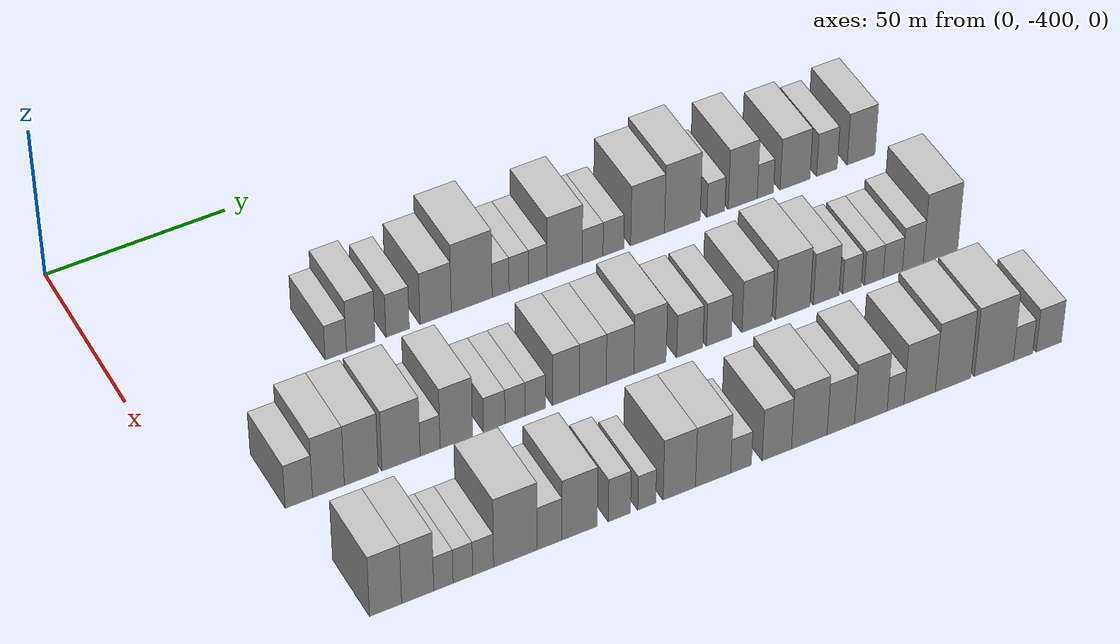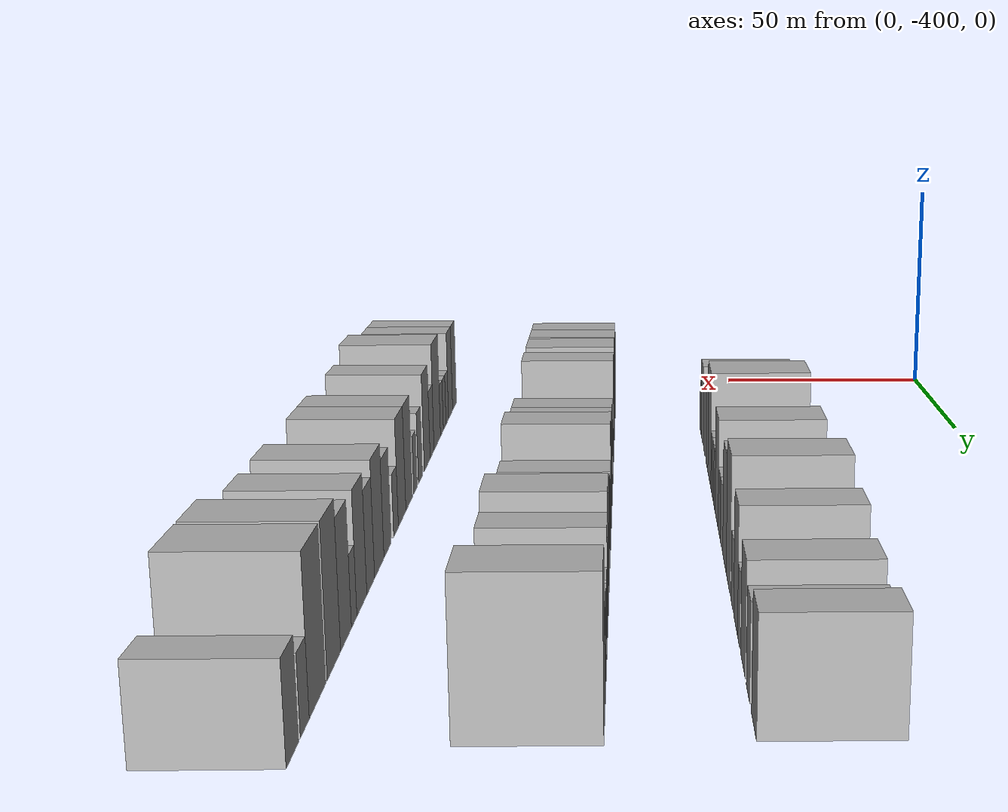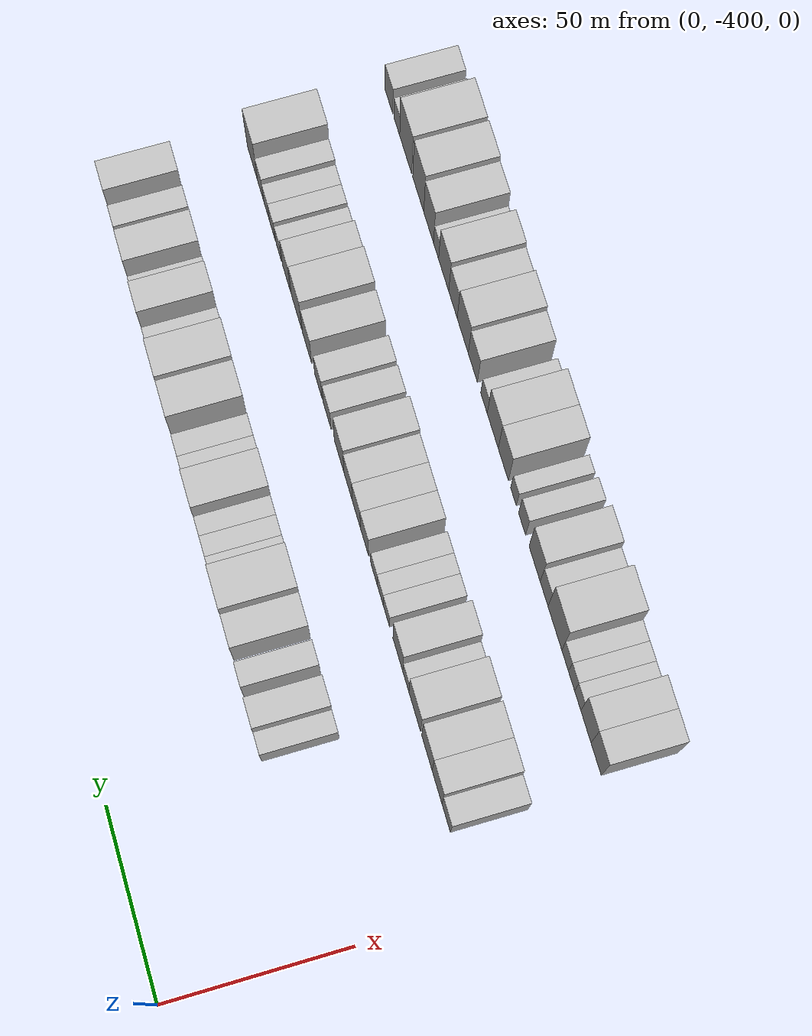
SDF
<sdf version="1.6">
 <world name="default">
  <model name="building_1">
   <static>1</static>
   <pose>50.0000 -347.2101 0 0.000000 0.000000 0.000000</pose>
   <link name="link">
    <pose>0 0 6.00 0 0 0</pose>
    <collision name="collision"><geometry><box><size>20.0000 5.8599 12.0000</size></box></geometry></collision>
    <visual name="visual">
     <cast_shadows>0</cast_shadows>
     <geometry><box><size>20.0000 5.8599 12.0000</size></box></geometry>
     <material>
      <script>
       <uri>model://HANNAS_wall/materials/scripts</uri>
       <uri>model://HANNAS_wall/materials/textures</uri>
       <name>vrc/HANNAS_wall</name>
      </script>
     </material>
    </visual>
   </link>
  </model>
  <model name="building_2">
   <static>1</static>
   <pose>50.0000 -340.2969 0 0.000000 0.000000 0.000000</pose>
   <link name="link">
    <pose>0 0 9.00 0 0 0</pose>
    <collision name="collision"><geometry><box><size>20.0000 7.9666 18.0000</size></box></geometry></collision>
    <visual name="visual">
     <cast_shadows>0</cast_shadows>
     <geometry><box><size>20.0000 7.9666 18.0000</size></box></geometry>
     <material>
      <script>
       <uri>model://HANNAS_wall/materials/scripts</uri>
       <uri>model://HANNAS_wall/materials/textures</uri>
       <name>vrc/HANNAS_wall</name>
      </script>
     </material>
    </visual>
   </link>
  </model>
  <model name="building_3">
   <static>1</static>
   <pose>50.0000 -330.0451 0 0.000000 0.000000 0.000000</pose>
   <link name="link">
    <pose>0 0 7.50 0 0 0</pose>
    <collision name="collision"><geometry><box><size>20.0000 6.5369 15.0000</size></box></geometry></collision>
    <visual name="visual">
     <cast_shadows>0</cast_shadows>
     <geometry><box><size>20.0000 6.5369 15.0000</size></box></geometry>
     <material>
      <script>
       <uri>model://HANNAS_wall/materials/scripts</uri>
       <uri>model://HANNAS_wall/materials/textures</uri>
       <name>vrc/HANNAS_wall</name>
      </script>
     </material>
    </visual>
   </link>
  </model>
  <model name="building_4">
   <static>1</static>
   <pose>50.0000 -319.3938 0 0.000000 0.000000 0.000000</pose>
   <link name="link">
    <pose>0 0 9.00 0 0 0</pose>
    <collision name="collision"><geometry><box><size>20.0000 8.7658 18.0000</size></box></geometry></collision>
    <visual name="visual">
     <cast_shadows>0</cast_shadows>
     <geometry><box><size>20.0000 8.7658 18.0000</size></box></geometry>
     <material>
      <script>
       <uri>model://HANNAS_wall/materials/scripts</uri>
       <uri>model://HANNAS_wall/materials/textures</uri>
       <name>vrc/HANNAS_wall</name>
      </script>
     </material>
    </visual>
   </link>
  </model>
  <model name="building_5">
   <static>1</static>
   <pose>50.0000 -309.2314 0 0.000000 0.000000 0.000000</pose>
   <link name="link">
    <pose>0 0 12.00 0 0 0</pose>
    <collision name="collision"><geometry><box><size>20.0000 11.5589 24.0000</size></box></geometry></collision>
    <visual name="visual">
     <cast_shadows>0</cast_shadows>
     <geometry><box><size>20.0000 11.5589 24.0000</size></box></geometry>
     <material>
      <script>
       <uri>model://HANNAS_wall/materials/scripts</uri>
       <uri>model://HANNAS_wall/materials/textures</uri>
       <name>vrc/HANNAS_wall</name>
      </script>
     </material>
    </visual>
   </link>
  </model>
  <model name="building_6">
   <static>1</static>
   <pose>50.0000 -301.0503 0 0.000000 0.000000 0.000000</pose>
   <link name="link">
    <pose>0 0 6.00 0 0 0</pose>
    <collision name="collision"><geometry><box><size>20.0000 4.8033 12.0000</size></box></geometry></collision>
    <visual name="visual">
     <cast_shadows>0</cast_shadows>
     <geometry><box><size>20.0000 4.8033 12.0000</size></box></geometry>
     <material>
      <script>
       <uri>model://HANNAS_wall/materials/scripts</uri>
       <uri>model://HANNAS_wall/materials/textures</uri>
       <name>vrc/HANNAS_wall</name>
      </script>
     </material>
    </visual>
   </link>
  </model>
  <model name="building_7">
   <static>1</static>
   <pose>50.0000 -295.8936 0 0.000000 0.000000 0.000000</pose>
   <link name="link">
    <pose>0 0 6.00 0 0 0</pose>
    <collision name="collision"><geometry><box><size>20.0000 5.5101 12.0000</size></box></geometry></collision>
    <visual name="visual">
     <cast_shadows>0</cast_shadows>
     <geometry><box><size>20.0000 5.5101 12.0000</size></box></geometry>
     <material>
      <script>
       <uri>model://HANNAS_wall/materials/scripts</uri>
       <uri>model://HANNAS_wall/materials/textures</uri>
       <name>vrc/HANNAS_wall</name>
      </script>
     </material>
    </visual>
   </link>
  </model>
  <model name="building_8">
   <static>1</static>
   <pose>50.0000 -290.5220 0 0.000000 0.000000 0.000000</pose>
   <link name="link">
    <pose>0 0 6.00 0 0 0</pose>
    <collision name="collision"><geometry><box><size>20.0000 5.2332 12.0000</size></box></geometry></collision>
    <visual name="visual">
     <cast_shadows>0</cast_shadows>
     <geometry><box><size>20.0000 5.2332 12.0000</size></box></geometry>
     <material>
      <script>
       <uri>model://HANNAS_wall/materials/scripts</uri>
       <uri>model://HANNAS_wall/materials/textures</uri>
       <name>vrc/HANNAS_wall</name>
      </script>
     </material>
    </visual>
   </link>
  </model>
  <model name="building_9">
   <static>1</static>
   <pose>50.0000 -282.7947 0 0.000000 0.000000 0.000000</pose>
   <link name="link">
    <pose>0 0 10.50 0 0 0</pose>
    <collision name="collision"><geometry><box><size>20.0000 10.2213 21.0000</size></box></geometry></collision>
    <visual name="visual">
     <cast_shadows>0</cast_shadows>
     <geometry><box><size>20.0000 10.2213 21.0000</size></box></geometry>
     <material>
      <script>
       <uri>model://HANNAS_wall/materials/scripts</uri>
       <uri>model://HANNAS_wall/materials/textures</uri>
       <name>vrc/HANNAS_wall</name>
      </script>
     </material>
    </visual>
   </link>
  </model>
  <model name="building_10">
   <static>1</static>
   <pose>50.0000 -274.6927 0 0.000000 0.000000 0.000000</pose>
   <link name="link">
    <pose>0 0 6.00 0 0 0</pose>
    <collision name="collision"><geometry><box><size>20.0000 5.9826 12.0000</size></box></geometry></collision>
    <visual name="visual">
     <cast_shadows>0</cast_shadows>
     <geometry><box><size>20.0000 5.9826 12.0000</size></box></geometry>
     <material>
      <script>
       <uri>model://HANNAS_wall/materials/scripts</uri>
       <uri>model://HANNAS_wall/materials/textures</uri>
       <name>vrc/HANNAS_wall</name>
      </script>
     </material>
    </visual>
   </link>
  </model>
  <model name="building_11">
   <static>1</static>
   <pose>50.0000 -268.7035 0 0.000000 0.000000 0.000000</pose>
   <link name="link">
    <pose>0 0 6.00 0 0 0</pose>
    <collision name="collision"><geometry><box><size>20.0000 5.9959 12.0000</size></box></geometry></collision>
    <visual name="visual">
     <cast_shadows>0</cast_shadows>
     <geometry><box><size>20.0000 5.9959 12.0000</size></box></geometry>
     <material>
      <script>
       <uri>model://HANNAS_wall/materials/scripts</uri>
       <uri>model://HANNAS_wall/materials/textures</uri>
       <name>vrc/HANNAS_wall</name>
      </script>
     </material>
    </visual>
   </link>
  </model>
  <model name="building_12">
   <static>1</static>
   <pose>50.0000 -258.7774 0 0.000000 0.000000 0.000000</pose>
   <link name="link">
    <pose>0 0 10.50 0 0 0</pose>
    <collision name="collision"><geometry><box><size>20.0000 9.8562 21.0000</size></box></geometry></collision>
    <visual name="visual">
     <cast_shadows>0</cast_shadows>
     <geometry><box><size>20.0000 9.8562 21.0000</size></box></geometry>
     <material>
      <script>
       <uri>model://HANNAS_wall/materials/scripts</uri>
       <uri>model://HANNAS_wall/materials/textures</uri>
       <name>vrc/HANNAS_wall</name>
      </script>
     </material>
    </visual>
   </link>
  </model>
  <model name="building_13">
   <static>1</static>
   <pose>50.0000 -248.6221 0 0.000000 0.000000 0.000000</pose>
   <link name="link">
    <pose>0 0 12.00 0 0 0</pose>
    <collision name="collision"><geometry><box><size>20.0000 10.4544 24.0000</size></box></geometry></collision>
    <visual name="visual">
     <cast_shadows>0</cast_shadows>
     <geometry><box><size>20.0000 10.4544 24.0000</size></box></geometry>
     <material>
      <script>
       <uri>model://HANNAS_wall/materials/scripts</uri>
       <uri>model://HANNAS_wall/materials/textures</uri>
       <name>vrc/HANNAS_wall</name>
      </script>
     </material>
    </visual>
   </link>
  </model>
  <model name="building_14">
   <static>1</static>
   <pose>50.0000 -238.7557 0 0.000000 0.000000 0.000000</pose>
   <link name="link">
    <pose>0 0 6.00 0 0 0</pose>
    <collision name="collision"><geometry><box><size>20.0000 5.2784 12.0000</size></box></geometry></collision>
    <visual name="visual">
     <cast_shadows>0</cast_shadows>
     <geometry><box><size>20.0000 5.2784 12.0000</size></box></geometry>
     <material>
      <script>
       <uri>model://HANNAS_wall/materials/scripts</uri>
       <uri>model://HANNAS_wall/materials/textures</uri>
       <name>vrc/HANNAS_wall</name>
      </script>
     </material>
    </visual>
   </link>
  </model>
  <model name="building_15">
   <static>1</static>
   <pose>50.0000 -230.8224 0 0.000000 0.000000 0.000000</pose>
   <link name="link">
    <pose>0 0 10.50 0 0 0</pose>
    <collision name="collision"><geometry><box><size>20.0000 8.5884 21.0000</size></box></geometry></collision>
    <visual name="visual">
     <cast_shadows>0</cast_shadows>
     <geometry><box><size>20.0000 8.5884 21.0000</size></box></geometry>
     <material>
      <script>
       <uri>model://HANNAS_wall/materials/scripts</uri>
       <uri>model://HANNAS_wall/materials/textures</uri>
       <name>vrc/HANNAS_wall</name>
      </script>
     </material>
    </visual>
   </link>
  </model>
  <model name="building_16">
   <static>1</static>
   <pose>50.0000 -224.1120 0 0.000000 0.000000 0.000000</pose>
   <link name="link">
    <pose>0 0 6.00 0 0 0</pose>
    <collision name="collision"><geometry><box><size>20.0000 4.8323 12.0000</size></box></geometry></collision>
    <visual name="visual">
     <cast_shadows>0</cast_shadows>
     <geometry><box><size>20.0000 4.8323 12.0000</size></box></geometry>
     <material>
      <script>
       <uri>model://HANNAS_wall/materials/scripts</uri>
       <uri>model://HANNAS_wall/materials/textures</uri>
       <name>vrc/HANNAS_wall</name>
      </script>
     </material>
    </visual>
   </link>
  </model>
  <model name="building_17">
   <static>1</static>
   <pose>50.0000 -215.2455 0 0.000000 0.000000 0.000000</pose>
   <link name="link">
    <pose>0 0 9.00 0 0 0</pose>
    <collision name="collision"><geometry><box><size>20.0000 8.9008 18.0000</size></box></geometry></collision>
    <visual name="visual">
     <cast_shadows>0</cast_shadows>
     <geometry><box><size>20.0000 8.9008 18.0000</size></box></geometry>
     <material>
      <script>
       <uri>model://HANNAS_wall/materials/scripts</uri>
       <uri>model://HANNAS_wall/materials/textures</uri>
       <name>vrc/HANNAS_wall</name>
      </script>
     </material>
    </visual>
   </link>
  </model>
  <model name="building_18">
   <static>1</static>
   <pose>50.0000 -205.6938 0 0.000000 0.000000 0.000000</pose>
   <link name="link">
    <pose>0 0 7.50 0 0 0</pose>
    <collision name="collision"><geometry><box><size>20.0000 6.2026 15.0000</size></box></geometry></collision>
    <visual name="visual">
     <cast_shadows>0</cast_shadows>
     <geometry><box><size>20.0000 6.2026 15.0000</size></box></geometry>
     <material>
      <script>
       <uri>model://HANNAS_wall/materials/scripts</uri>
       <uri>model://HANNAS_wall/materials/textures</uri>
       <name>vrc/HANNAS_wall</name>
      </script>
     </material>
    </visual>
   </link>
  </model>
  <model name="building_19">
   <static>1</static>
   <pose>50.0000 -195.4031 0 0.000000 0.000000 0.000000</pose>
   <link name="link">
    <pose>0 0 9.00 0 0 0</pose>
    <collision name="collision"><geometry><box><size>20.0000 8.3786 18.0000</size></box></geometry></collision>
    <visual name="visual">
     <cast_shadows>0</cast_shadows>
     <geometry><box><size>20.0000 8.3786 18.0000</size></box></geometry>
     <material>
      <script>
       <uri>model://HANNAS_wall/materials/scripts</uri>
       <uri>model://HANNAS_wall/materials/textures</uri>
       <name>vrc/HANNAS_wall</name>
      </script>
     </material>
    </visual>
   </link>
  </model>
  <model name="building_83">
   <static>1</static>
   <pose>90.0000 -376.3585 0 0.000000 0.000000 0.000000</pose>
   <link name="link">
    <pose>0 0 7.50 0 0 0</pose>
    <collision name="collision"><geometry><box><size>20.0000 7.2830 15.0000</size></box></geometry></collision>
    <visual name="visual">
     <cast_shadows>0</cast_shadows>
     <geometry><box><size>20.0000 7.2830 15.0000</size></box></geometry>
     <material>
      <script>
       <uri>model://HANNAS_wall/materials/scripts</uri>
       <uri>model://HANNAS_wall/materials/textures</uri>
       <name>vrc/HANNAS_wall</name>
      </script>
     </material>
    </visual>
   </link>
  </model>
  <model name="building_84">
   <static>1</static>
   <pose>90.0000 -368.4605 0 0.000000 0.000000 0.000000</pose>
   <link name="link">
    <pose>0 0 10.50 0 0 0</pose>
    <collision name="collision"><geometry><box><size>20.0000 8.5130 21.0000</size></box></geometry></collision>
    <visual name="visual">
     <cast_shadows>0</cast_shadows>
     <geometry><box><size>20.0000 8.5130 21.0000</size></box></geometry>
     <material>
      <script>
       <uri>model://HANNAS_wall/materials/scripts</uri>
       <uri>model://HANNAS_wall/materials/textures</uri>
       <name>vrc/HANNAS_wall</name>
      </script>
     </material>
    </visual>
   </link>
  </model>
  <model name="building_85">
   <static>1</static>
   <pose>90.0000 -359.6305 0 0.000000 0.000000 0.000000</pose>
   <link name="link">
    <pose>0 0 10.50 0 0 0</pose>
    <collision name="collision"><geometry><box><size>20.0000 9.1469 21.0000</size></box></geometry></collision>
    <visual name="visual">
     <cast_shadows>0</cast_shadows>
     <geometry><box><size>20.0000 9.1469 21.0000</size></box></geometry>
     <material>
      <script>
       <uri>model://HANNAS_wall/materials/scripts</uri>
       <uri>model://HANNAS_wall/materials/textures</uri>
       <name>vrc/HANNAS_wall</name>
      </script>
     </material>
    </visual>
   </link>
  </model>
  <model name="building_86">
   <static>1</static>
   <pose>90.0000 -348.8910 0 0.000000 0.000000 0.000000</pose>
   <link name="link">
    <pose>0 0 10.50 0 0 0</pose>
    <collision name="collision"><geometry><box><size>20.0000 10.3321 21.0000</size></box></geometry></collision>
    <visual name="visual">
     <cast_shadows>0</cast_shadows>
     <geometry><box><size>20.0000 10.3321 21.0000</size></box></geometry>
     <material>
      <script>
       <uri>model://HANNAS_wall/materials/scripts</uri>
       <uri>model://HANNAS_wall/materials/textures</uri>
       <name>vrc/HANNAS_wall</name>
      </script>
     </material>
    </visual>
   </link>
  </model>
  <model name="building_87">
   <static>1</static>
   <pose>90.0000 -341.0014 0 0.000000 0.000000 0.000000</pose>
   <link name="link">
    <pose>0 0 6.00 0 0 0</pose>
    <collision name="collision"><geometry><box><size>20.0000 5.4469 12.0000</size></box></geometry></collision>
    <visual name="visual">
     <cast_shadows>0</cast_shadows>
     <geometry><box><size>20.0000 5.4469 12.0000</size></box></geometry>
     <material>
      <script>
       <uri>model://HANNAS_wall/materials/scripts</uri>
       <uri>model://HANNAS_wall/materials/textures</uri>
       <name>vrc/HANNAS_wall</name>
      </script>
     </material>
    </visual>
   </link>
  </model>
  <model name="building_88">
   <static>1</static>
   <pose>90.0000 -333.8398 0 0.000000 0.000000 0.000000</pose>
   <link name="link">
    <pose>0 0 10.50 0 0 0</pose>
    <collision name="collision"><geometry><box><size>20.0000 8.8764 21.0000</size></box></geometry></collision>
    <visual name="visual">
     <cast_shadows>0</cast_shadows>
     <geometry><box><size>20.0000 8.8764 21.0000</size></box></geometry>
     <material>
      <script>
       <uri>model://HANNAS_wall/materials/scripts</uri>
       <uri>model://HANNAS_wall/materials/textures</uri>
       <name>vrc/HANNAS_wall</name>
      </script>
     </material>
    </visual>
   </link>
  </model>
  <model name="building_89">
   <static>1</static>
   <pose>90.0000 -323.4327 0 0.000000 0.000000 0.000000</pose>
   <link name="link">
    <pose>0 0 6.00 0 0 0</pose>
    <collision name="collision"><geometry><box><size>20.0000 5.9376 12.0000</size></box></geometry></collision>
    <visual name="visual">
     <cast_shadows>0</cast_shadows>
     <geometry><box><size>20.0000 5.9376 12.0000</size></box></geometry>
     <material>
      <script>
       <uri>model://HANNAS_wall/materials/scripts</uri>
       <uri>model://HANNAS_wall/materials/textures</uri>
       <name>vrc/HANNAS_wall</name>
      </script>
     </material>
    </visual>
   </link>
  </model>
  <model name="building_90">
   <static>1</static>
   <pose>90.0000 -317.7315 0 0.000000 0.000000 0.000000</pose>
   <link name="link">
    <pose>0 0 6.00 0 0 0</pose>
    <collision name="collision"><geometry><box><size>20.0000 5.4647 12.0000</size></box></geometry></collision>
    <visual name="visual">
     <cast_shadows>0</cast_shadows>
     <geometry><box><size>20.0000 5.4647 12.0000</size></box></geometry>
     <material>
      <script>
       <uri>model://HANNAS_wall/materials/scripts</uri>
       <uri>model://HANNAS_wall/materials/textures</uri>
       <name>vrc/HANNAS_wall</name>
      </script>
     </material>
    </visual>
   </link>
  </model>
  <model name="building_91">
   <static>1</static>
   <pose>90.0000 -312.1527 0 0.000000 0.000000 0.000000</pose>
   <link name="link">
    <pose>0 0 6.00 0 0 0</pose>
    <collision name="collision"><geometry><box><size>20.0000 5.6929 12.0000</size></box></geometry></collision>
    <visual name="visual">
     <cast_shadows>0</cast_shadows>
     <geometry><box><size>20.0000 5.6929 12.0000</size></box></geometry>
     <material>
      <script>
       <uri>model://HANNAS_wall/materials/scripts</uri>
       <uri>model://HANNAS_wall/materials/textures</uri>
       <name>vrc/HANNAS_wall</name>
      </script>
     </material>
    </visual>
   </link>
  </model>
  <model name="building_92">
   <static>1</static>
   <pose>90.0000 -303.5715 0 0.000000 0.000000 0.000000</pose>
   <link name="link">
    <pose>0 0 9.00 0 0 0</pose>
    <collision name="collision"><geometry><box><size>20.0000 7.4697 18.0000</size></box></geometry></collision>
    <visual name="visual">
     <cast_shadows>0</cast_shadows>
     <geometry><box><size>20.0000 7.4697 18.0000</size></box></geometry>
     <material>
      <script>
       <uri>model://HANNAS_wall/materials/scripts</uri>
       <uri>model://HANNAS_wall/materials/textures</uri>
       <name>vrc/HANNAS_wall</name>
      </script>
     </material>
    </visual>
   </link>
  </model>
  <model name="building_93">
   <static>1</static>
   <pose>90.0000 -296.0632 0 0.000000 0.000000 0.000000</pose>
   <link name="link">
    <pose>0 0 9.00 0 0 0</pose>
    <collision name="collision"><geometry><box><size>20.0000 7.5468 18.0000</size></box></geometry></collision>
    <visual name="visual">
     <cast_shadows>0</cast_shadows>
     <geometry><box><size>20.0000 7.5468 18.0000</size></box></geometry>
     <material>
      <script>
       <uri>model://HANNAS_wall/materials/scripts</uri>
       <uri>model://HANNAS_wall/materials/textures</uri>
       <name>vrc/HANNAS_wall</name>
      </script>
     </material>
    </visual>
   </link>
  </model>
  <model name="building_94">
   <static>1</static>
   <pose>90.0000 -288.4073 0 0.000000 0.000000 0.000000</pose>
   <link name="link">
    <pose>0 0 9.00 0 0 0</pose>
    <collision name="collision"><geometry><box><size>20.0000 7.7650 18.0000</size></box></geometry></collision>
    <visual name="visual">
     <cast_shadows>0</cast_shadows>
     <geometry><box><size>20.0000 7.7650 18.0000</size></box></geometry>
     <material>
      <script>
       <uri>model://HANNAS_wall/materials/scripts</uri>
       <uri>model://HANNAS_wall/materials/textures</uri>
       <name>vrc/HANNAS_wall</name>
      </script>
     </material>
    </visual>
   </link>
  </model>
  <model name="building_95">
   <static>1</static>
   <pose>90.0000 -279.9620 0 0.000000 0.000000 0.000000</pose>
   <link name="link">
    <pose>0 0 10.50 0 0 0</pose>
    <collision name="collision"><geometry><box><size>20.0000 9.1255 21.0000</size></box></geometry></collision>
    <visual name="visual">
     <cast_shadows>0</cast_shadows>
     <geometry><box><size>20.0000 9.1255 21.0000</size></box></geometry>
     <material>
      <script>
       <uri>model://HANNAS_wall/materials/scripts</uri>
       <uri>model://HANNAS_wall/materials/textures</uri>
       <name>vrc/HANNAS_wall</name>
      </script>
     </material>
    </visual>
   </link>
  </model>
  <model name="building_96">
   <static>1</static>
   <pose>90.0000 -268.6611 0 0.000000 0.000000 0.000000</pose>
   <link name="link">
    <pose>0 0 7.50 0 0 0</pose>
    <collision name="collision"><geometry><box><size>20.0000 7.4763 15.0000</size></box></geometry></collision>
    <visual name="visual">
     <cast_shadows>0</cast_shadows>
     <geometry><box><size>20.0000 7.4763 15.0000</size></box></geometry>
     <material>
      <script>
       <uri>model://HANNAS_wall/materials/scripts</uri>
       <uri>model://HANNAS_wall/materials/textures</uri>
       <name>vrc/HANNAS_wall</name>
      </script>
     </material>
    </visual>
   </link>
  </model>
  <model name="building_97">
   <static>1</static>
   <pose>90.0000 -260.3277 0 0.000000 0.000000 0.000000</pose>
   <link name="link">
    <pose>0 0 7.50 0 0 0</pose>
    <collision name="collision"><geometry><box><size>20.0000 7.1905 15.0000</size></box></geometry></collision>
    <visual name="visual">
     <cast_shadows>0</cast_shadows>
     <geometry><box><size>20.0000 7.1905 15.0000</size></box></geometry>
     <material>
      <script>
       <uri>model://HANNAS_wall/materials/scripts</uri>
       <uri>model://HANNAS_wall/materials/textures</uri>
       <name>vrc/HANNAS_wall</name>
      </script>
     </material>
    </visual>
   </link>
  </model>
  <model name="building_98">
   <static>1</static>
   <pose>90.0000 -249.4045 0 0.000000 0.000000 0.000000</pose>
   <link name="link">
    <pose>0 0 9.00 0 0 0</pose>
    <collision name="collision"><geometry><box><size>20.0000 8.6558 18.0000</size></box></geometry></collision>
    <visual name="visual">
     <cast_shadows>0</cast_shadows>
     <geometry><box><size>20.0000 8.6558 18.0000</size></box></geometry>
     <material>
      <script>
       <uri>model://HANNAS_wall/materials/scripts</uri>
       <uri>model://HANNAS_wall/materials/textures</uri>
       <name>vrc/HANNAS_wall</name>
      </script>
     </material>
    </visual>
   </link>
  </model>
  <model name="building_99">
   <static>1</static>
   <pose>90.0000 -239.0733 0 0.000000 0.000000 0.000000</pose>
   <link name="link">
    <pose>0 0 10.50 0 0 0</pose>
    <collision name="collision"><geometry><box><size>20.0000 10.0066 21.0000</size></box></geometry></collision>
    <visual name="visual">
     <cast_shadows>0</cast_shadows>
     <geometry><box><size>20.0000 10.0066 21.0000</size></box></geometry>
     <material>
      <script>
       <uri>model://HANNAS_wall/materials/scripts</uri>
       <uri>model://HANNAS_wall/materials/textures</uri>
       <name>vrc/HANNAS_wall</name>
      </script>
     </material>
    </visual>
   </link>
  </model>
  <model name="building_100">
   <static>1</static>
   <pose>90.0000 -229.3037 0 0.000000 0.000000 0.000000</pose>
   <link name="link">
    <pose>0 0 9.00 0 0 0</pose>
    <collision name="collision"><geometry><box><size>20.0000 7.5325 18.0000</size></box></geometry></collision>
    <visual name="visual">
     <cast_shadows>0</cast_shadows>
     <geometry><box><size>20.0000 7.5325 18.0000</size></box></geometry>
     <material>
      <script>
       <uri>model://HANNAS_wall/materials/scripts</uri>
       <uri>model://HANNAS_wall/materials/textures</uri>
       <name>vrc/HANNAS_wall</name>
      </script>
     </material>
    </visual>
   </link>
  </model>
  <model name="building_101">
   <static>1</static>
   <pose>90.0000 -221.8185 0 0.000000 0.000000 0.000000</pose>
   <link name="link">
    <pose>0 0 6.00 0 0 0</pose>
    <collision name="collision"><geometry><box><size>20.0000 5.4380 12.0000</size></box></geometry></collision>
    <visual name="visual">
     <cast_shadows>0</cast_shadows>
     <geometry><box><size>20.0000 5.4380 12.0000</size></box></geometry>
     <material>
      <script>
       <uri>model://HANNAS_wall/materials/scripts</uri>
       <uri>model://HANNAS_wall/materials/textures</uri>
       <name>vrc/HANNAS_wall</name>
      </script>
     </material>
    </visual>
   </link>
  </model>
  <model name="building_102">
   <static>1</static>
   <pose>90.0000 -215.3519 0 0.000000 0.000000 0.000000</pose>
   <link name="link">
    <pose>0 0 6.00 0 0 0</pose>
    <collision name="collision"><geometry><box><size>20.0000 5.4952 12.0000</size></box></geometry></collision>
    <visual name="visual">
     <cast_shadows>0</cast_shadows>
     <geometry><box><size>20.0000 5.4952 12.0000</size></box></geometry>
     <material>
      <script>
       <uri>model://HANNAS_wall/materials/scripts</uri>
       <uri>model://HANNAS_wall/materials/textures</uri>
       <name>vrc/HANNAS_wall</name>
      </script>
     </material>
    </visual>
   </link>
  </model>
  <model name="building_103">
   <static>1</static>
   <pose>90.0000 -209.7659 0 0.000000 0.000000 0.000000</pose>
   <link name="link">
    <pose>0 0 6.00 0 0 0</pose>
    <collision name="collision"><geometry><box><size>20.0000 5.6768 12.0000</size></box></geometry></collision>
    <visual name="visual">
     <cast_shadows>0</cast_shadows>
     <geometry><box><size>20.0000 5.6768 12.0000</size></box></geometry>
     <material>
      <script>
       <uri>model://HANNAS_wall/materials/scripts</uri>
       <uri>model://HANNAS_wall/materials/textures</uri>
       <name>vrc/HANNAS_wall</name>
      </script>
     </material>
    </visual>
   </link>
  </model>
  <model name="building_104">
   <static>1</static>
   <pose>90.0000 -203.8306 0 0.000000 0.000000 0.000000</pose>
   <link name="link">
    <pose>0 0 7.50 0 0 0</pose>
    <collision name="collision"><geometry><box><size>20.0000 6.1937 15.0000</size></box></geometry></collision>
    <visual name="visual">
     <cast_shadows>0</cast_shadows>
     <geometry><box><size>20.0000 6.1937 15.0000</size></box></geometry>
     <material>
      <script>
       <uri>model://HANNAS_wall/materials/scripts</uri>
       <uri>model://HANNAS_wall/materials/textures</uri>
       <name>vrc/HANNAS_wall</name>
      </script>
     </material>
    </visual>
   </link>
  </model>
  <model name="building_105">
   <static>1</static>
   <pose>90.0000 -195.6100 0 0.000000 0.000000 0.000000</pose>
   <link name="link">
    <pose>0 0 12.00 0 0 0</pose>
    <collision name="collision"><geometry><box><size>20.0000 10.2477 24.0000</size></box></geometry></collision>
    <visual name="visual">
     <cast_shadows>0</cast_shadows>
     <geometry><box><size>20.0000 10.2477 24.0000</size></box></geometry>
     <material>
      <script>
       <uri>model://HANNAS_wall/materials/scripts</uri>
       <uri>model://HANNAS_wall/materials/textures</uri>
       <name>vrc/HANNAS_wall</name>
      </script>
     </material>
    </visual>
   </link>
  </model>
  <model name="building_173">
   <static>1</static>
   <pose>130.0000 -372.7880 0 0.000000 0.000000 0.000000</pose>
   <link name="link">
    <pose>0 0 10.50 0 0 0</pose>
    <collision name="collision"><geometry><box><size>20.0000 8.4240 21.0000</size></box></geometry></collision>
    <visual name="visual">
     <cast_shadows>0</cast_shadows>
     <geometry><box><size>20.0000 8.4240 21.0000</size></box></geometry>
     <material>
      <script>
       <uri>model://HANNAS_wall/materials/scripts</uri>
       <uri>model://HANNAS_wall/materials/textures</uri>
       <name>vrc/HANNAS_wall</name>
      </script>
     </material>
    </visual>
   </link>
  </model>
  <model name="building_174">
   <static>1</static>
   <pose>130.0000 -364.3390 0 0.000000 0.000000 0.000000</pose>
   <link name="link">
    <pose>0 0 10.50 0 0 0</pose>
    <collision name="collision"><geometry><box><size>20.0000 8.4742 21.0000</size></box></geometry></collision>
    <visual name="visual">
     <cast_shadows>0</cast_shadows>
     <geometry><box><size>20.0000 8.4742 21.0000</size></box></geometry>
     <material>
      <script>
       <uri>model://HANNAS_wall/materials/scripts</uri>
       <uri>model://HANNAS_wall/materials/textures</uri>
       <name>vrc/HANNAS_wall</name>
      </script>
     </material>
    </visual>
   </link>
  </model>
  <model name="building_175">
   <static>1</static>
   <pose>130.0000 -357.5301 0 0.000000 0.000000 0.000000</pose>
   <link name="link">
    <pose>0 0 6.00 0 0 0</pose>
    <collision name="collision"><geometry><box><size>20.0000 5.1436 12.0000</size></box></geometry></collision>
    <visual name="visual">
     <cast_shadows>0</cast_shadows>
     <geometry><box><size>20.0000 5.1436 12.0000</size></box></geometry>
     <material>
      <script>
       <uri>model://HANNAS_wall/materials/scripts</uri>
       <uri>model://HANNAS_wall/materials/textures</uri>
       <name>vrc/HANNAS_wall</name>
      </script>
     </material>
    </visual>
   </link>
  </model>
  <model name="building_176">
   <static>1</static>
   <pose>130.0000 -352.3601 0 0.000000 0.000000 0.000000</pose>
   <link name="link">
    <pose>0 0 6.00 0 0 0</pose>
    <collision name="collision"><geometry><box><size>20.0000 5.1964 12.0000</size></box></geometry></collision>
    <visual name="visual">
     <cast_shadows>0</cast_shadows>
     <geometry><box><size>20.0000 5.1964 12.0000</size></box></geometry>
     <material>
      <script>
       <uri>model://HANNAS_wall/materials/scripts</uri>
       <uri>model://HANNAS_wall/materials/textures</uri>
       <name>vrc/HANNAS_wall</name>
      </script>
     </material>
    </visual>
   </link>
  </model>
  <model name="building_177">
   <static>1</static>
   <pose>130.0000 -346.9806 0 0.000000 0.000000 0.000000</pose>
   <link name="link">
    <pose>0 0 6.00 0 0 0</pose>
    <collision name="collision"><geometry><box><size>20.0000 5.5626 12.0000</size></box></geometry></collision>
    <visual name="visual">
     <cast_shadows>0</cast_shadows>
     <geometry><box><size>20.0000 5.5626 12.0000</size></box></geometry>
     <material>
      <script>
       <uri>model://HANNAS_wall/materials/scripts</uri>
       <uri>model://HANNAS_wall/materials/textures</uri>
       <name>vrc/HANNAS_wall</name>
      </script>
     </material>
    </visual>
   </link>
  </model>
  <model name="building_178">
   <static>1</static>
   <pose>130.0000 -338.3600 0 0.000000 0.000000 0.000000</pose>
   <link name="link">
    <pose>0 0 12.00 0 0 0</pose>
    <collision name="collision"><geometry><box><size>20.0000 11.6785 24.0000</size></box></geometry></collision>
    <visual name="visual">
     <cast_shadows>0</cast_shadows>
     <geometry><box><size>20.0000 11.6785 24.0000</size></box></geometry>
     <material>
      <script>
       <uri>model://HANNAS_wall/materials/scripts</uri>
       <uri>model://HANNAS_wall/materials/textures</uri>
       <name>vrc/HANNAS_wall</name>
      </script>
     </material>
    </visual>
   </link>
  </model>
  <model name="building_179">
   <static>1</static>
   <pose>130.0000 -329.1686 0 0.000000 0.000000 0.000000</pose>
   <link name="link">
    <pose>0 0 7.50 0 0 0</pose>
    <collision name="collision"><geometry><box><size>20.0000 6.7044 15.0000</size></box></geometry></collision>
    <visual name="visual">
     <cast_shadows>0</cast_shadows>
     <geometry><box><size>20.0000 6.7044 15.0000</size></box></geometry>
     <material>
      <script>
       <uri>model://HANNAS_wall/materials/scripts</uri>
       <uri>model://HANNAS_wall/materials/textures</uri>
       <name>vrc/HANNAS_wall</name>
      </script>
     </material>
    </visual>
   </link>
  </model>
  <model name="building_180">
   <static>1</static>
   <pose>130.0000 -321.0222 0 0.000000 0.000000 0.000000</pose>
   <link name="link">
    <pose>0 0 10.50 0 0 0</pose>
    <collision name="collision"><geometry><box><size>20.0000 9.5884 21.0000</size></box></geometry></collision>
    <visual name="visual">
     <cast_shadows>0</cast_shadows>
     <geometry><box><size>20.0000 9.5884 21.0000</size></box></geometry>
     <material>
      <script>
       <uri>model://HANNAS_wall/materials/scripts</uri>
       <uri>model://HANNAS_wall/materials/textures</uri>
       <name>vrc/HANNAS_wall</name>
      </script>
     </material>
    </visual>
   </link>
  </model>
  <model name="building_181">
   <static>1</static>
   <pose>130.0000 -310.1983 0 0.000000 0.000000 0.000000</pose>
   <link name="link">
    <pose>0 0 7.50 0 0 0</pose>
    <collision name="collision"><geometry><box><size>20.0000 6.0593 15.0000</size></box></geometry></collision>
    <visual name="visual">
     <cast_shadows>0</cast_shadows>
     <geometry><box><size>20.0000 6.0593 15.0000</size></box></geometry>
     <material>
      <script>
       <uri>model://HANNAS_wall/materials/scripts</uri>
       <uri>model://HANNAS_wall/materials/textures</uri>
       <name>vrc/HANNAS_wall</name>
      </script>
     </material>
    </visual>
   </link>
  </model>
  <model name="building_182">
   <static>1</static>
   <pose>130.0000 -302.7050 0 0.000000 0.000000 0.000000</pose>
   <link name="link">
    <pose>0 0 6.00 0 0 0</pose>
    <collision name="collision"><geometry><box><size>20.0000 4.9275 12.0000</size></box></geometry></collision>
    <visual name="visual">
     <cast_shadows>0</cast_shadows>
     <geometry><box><size>20.0000 4.9275 12.0000</size></box></geometry>
     <material>
      <script>
       <uri>model://HANNAS_wall/materials/scripts</uri>
       <uri>model://HANNAS_wall/materials/textures</uri>
       <name>vrc/HANNAS_wall</name>
      </script>
     </material>
    </visual>
   </link>
  </model>
  <model name="building_183">
   <static>1</static>
   <pose>130.0000 -293.7721 0 0.000000 0.000000 0.000000</pose>
   <link name="link">
    <pose>0 0 10.50 0 0 0</pose>
    <collision name="collision"><geometry><box><size>20.0000 8.9382 21.0000</size></box></geometry></collision>
    <visual name="visual">
     <cast_shadows>0</cast_shadows>
     <geometry><box><size>20.0000 8.9382 21.0000</size></box></geometry>
     <material>
      <script>
       <uri>model://HANNAS_wall/materials/scripts</uri>
       <uri>model://HANNAS_wall/materials/textures</uri>
       <name>vrc/HANNAS_wall</name>
      </script>
     </material>
    </visual>
   </link>
  </model>
  <model name="building_184">
   <static>1</static>
   <pose>130.0000 -284.4159 0 0.000000 0.000000 0.000000</pose>
   <link name="link">
    <pose>0 0 10.50 0 0 0</pose>
    <collision name="collision"><geometry><box><size>20.0000 9.7742 21.0000</size></box></geometry></collision>
    <visual name="visual">
     <cast_shadows>0</cast_shadows>
     <geometry><box><size>20.0000 9.7742 21.0000</size></box></geometry>
     <material>
      <script>
       <uri>model://HANNAS_wall/materials/scripts</uri>
       <uri>model://HANNAS_wall/materials/textures</uri>
       <name>vrc/HANNAS_wall</name>
      </script>
     </material>
    </visual>
   </link>
  </model>
  <model name="building_185">
   <static>1</static>
   <pose>130.0000 -276.6298 0 0.000000 0.000000 0.000000</pose>
   <link name="link">
    <pose>0 0 6.00 0 0 0</pose>
    <collision name="collision"><geometry><box><size>20.0000 5.7978 12.0000</size></box></geometry></collision>
    <visual name="visual">
     <cast_shadows>0</cast_shadows>
     <geometry><box><size>20.0000 5.7978 12.0000</size></box></geometry>
     <material>
      <script>
       <uri>model://HANNAS_wall/materials/scripts</uri>
       <uri>model://HANNAS_wall/materials/textures</uri>
       <name>vrc/HANNAS_wall</name>
      </script>
     </material>
    </visual>
   </link>
  </model>
  <model name="building_186">
   <static>1</static>
   <pose>130.0000 -266.6159 0 0.000000 0.000000 0.000000</pose>
   <link name="link">
    <pose>0 0 9.00 0 0 0</pose>
    <collision name="collision"><geometry><box><size>20.0000 8.2301 18.0000</size></box></geometry></collision>
    <visual name="visual">
     <cast_shadows>0</cast_shadows>
     <geometry><box><size>20.0000 8.2301 18.0000</size></box></geometry>
     <material>
      <script>
       <uri>model://HANNAS_wall/materials/scripts</uri>
       <uri>model://HANNAS_wall/materials/textures</uri>
       <name>vrc/HANNAS_wall</name>
      </script>
     </material>
    </visual>
   </link>
  </model>
  <model name="building_187">
   <static>1</static>
   <pose>130.0000 -257.4721 0 0.000000 0.000000 0.000000</pose>
   <link name="link">
    <pose>0 0 10.50 0 0 0</pose>
    <collision name="collision"><geometry><box><size>20.0000 10.0576 21.0000</size></box></geometry></collision>
    <visual name="visual">
     <cast_shadows>0</cast_shadows>
     <geometry><box><size>20.0000 10.0576 21.0000</size></box></geometry>
     <material>
      <script>
       <uri>model://HANNAS_wall/materials/scripts</uri>
       <uri>model://HANNAS_wall/materials/textures</uri>
       <name>vrc/HANNAS_wall</name>
      </script>
     </material>
    </visual>
   </link>
  </model>
  <model name="building_188">
   <static>1</static>
   <pose>130.0000 -248.5601 0 0.000000 0.000000 0.000000</pose>
   <link name="link">
    <pose>0 0 9.00 0 0 0</pose>
    <collision name="collision"><geometry><box><size>20.0000 7.7664 18.0000</size></box></geometry></collision>
    <visual name="visual">
     <cast_shadows>0</cast_shadows>
     <geometry><box><size>20.0000 7.7664 18.0000</size></box></geometry>
     <material>
      <script>
       <uri>model://HANNAS_wall/materials/scripts</uri>
       <uri>model://HANNAS_wall/materials/textures</uri>
       <name>vrc/HANNAS_wall</name>
      </script>
     </material>
    </visual>
   </link>
  </model>
  <model name="building_189">
   <static>1</static>
   <pose>130.0000 -240.0219 0 0.000000 0.000000 0.000000</pose>
   <link name="link">
    <pose>0 0 10.50 0 0 0</pose>
    <collision name="collision"><geometry><box><size>20.0000 9.3100 21.0000</size></box></geometry></collision>
    <visual name="visual">
     <cast_shadows>0</cast_shadows>
     <geometry><box><size>20.0000 9.3100 21.0000</size></box></geometry>
     <material>
      <script>
       <uri>model://HANNAS_wall/materials/scripts</uri>
       <uri>model://HANNAS_wall/materials/textures</uri>
       <name>vrc/HANNAS_wall</name>
      </script>
     </material>
    </visual>
   </link>
  </model>
  <model name="building_190">
   <static>1</static>
   <pose>130.0000 -232.9652 0 0.000000 0.000000 0.000000</pose>
   <link name="link">
    <pose>0 0 6.00 0 0 0</pose>
    <collision name="collision"><geometry><box><size>20.0000 4.8035 12.0000</size></box></geometry></collision>
    <visual name="visual">
     <cast_shadows>0</cast_shadows>
     <geometry><box><size>20.0000 4.8035 12.0000</size></box></geometry>
     <material>
      <script>
       <uri>model://HANNAS_wall/materials/scripts</uri>
       <uri>model://HANNAS_wall/materials/textures</uri>
       <name>vrc/HANNAS_wall</name>
      </script>
     </material>
    </visual>
   </link>
  </model>
  <model name="building_191">
   <static>1</static>
   <pose>130.0000 -226.0312 0 0.000000 0.000000 0.000000</pose>
   <link name="link">
    <pose>0 0 10.50 0 0 0</pose>
    <collision name="collision"><geometry><box><size>20.0000 9.0646 21.0000</size></box></geometry></collision>
    <visual name="visual">
     <cast_shadows>0</cast_shadows>
     <geometry><box><size>20.0000 9.0646 21.0000</size></box></geometry>
     <material>
      <script>
       <uri>model://HANNAS_wall/materials/scripts</uri>
       <uri>model://HANNAS_wall/materials/textures</uri>
       <name>vrc/HANNAS_wall</name>
      </script>
     </material>
    </visual>
   </link>
  </model>
  <model name="building_192">
   <static>1</static>
   <pose>130.0000 -216.3418 0 0.000000 0.000000 0.000000</pose>
   <link name="link">
    <pose>0 0 12.00 0 0 0</pose>
    <collision name="collision"><geometry><box><size>20.0000 10.3141 24.0000</size></box></geometry></collision>
    <visual name="visual">
     <cast_shadows>0</cast_shadows>
     <geometry><box><size>20.0000 10.3141 24.0000</size></box></geometry>
     <material>
      <script>
       <uri>model://HANNAS_wall/materials/scripts</uri>
       <uri>model://HANNAS_wall/materials/textures</uri>
       <name>vrc/HANNAS_wall</name>
      </script>
     </material>
    </visual>
   </link>
  </model>
  <model name="building_193">
   <static>1</static>
   <pose>130.0000 -204.5047 0 0.000000 0.000000 0.000000</pose>
   <link name="link">
    <pose>0 0 12.00 0 0 0</pose>
    <collision name="collision"><geometry><box><size>20.0000 11.3602 24.0000</size></box></geometry></collision>
    <visual name="visual">
     <cast_shadows>0</cast_shadows>
     <geometry><box><size>20.0000 11.3602 24.0000</size></box></geometry>
     <material>
      <script>
       <uri>model://HANNAS_wall/materials/scripts</uri>
       <uri>model://HANNAS_wall/materials/textures</uri>
       <name>vrc/HANNAS_wall</name>
      </script>
     </material>
    </visual>
   </link>
  </model>
  <model name="building_194">
   <static>1</static>
   <pose>130.0000 -195.9768 0 0.000000 0.000000 0.000000</pose>
   <link name="link">
    <pose>0 0 6.00 0 0 0</pose>
    <collision name="collision"><geometry><box><size>20.0000 5.6956 12.0000</size></box></geometry></collision>
    <visual name="visual">
     <cast_shadows>0</cast_shadows>
     <geometry><box><size>20.0000 5.6956 12.0000</size></box></geometry>
     <material>
      <script>
       <uri>model://HANNAS_wall/materials/scripts</uri>
       <uri>model://HANNAS_wall/materials/textures</uri>
       <name>vrc/HANNAS_wall</name>
      </script>
     </material>
    </visual>
   </link>
  </model>
  <model name="building_195">
   <static>1</static>
   <pose>130.0000 -188.4229 0 0.000000 0.000000 0.000000</pose>
   <link name="link">
    <pose>0 0 7.50 0 0 0</pose>
    <collision name="collision"><geometry><box><size>20.0000 7.4121 15.0000</size></box></geometry></collision>
    <visual name="visual">
     <cast_shadows>0</cast_shadows>
     <geometry><box><size>20.0000 7.4121 15.0000</size></box></geometry>
     <material>
      <script>
       <uri>model://HANNAS_wall/materials/scripts</uri>
       <uri>model://HANNAS_wall/materials/textures</uri>
       <name>vrc/HANNAS_wall</name>
      </script>
     </material>
    </visual>
   </link>
  </model>
 </world>
</sdf>
